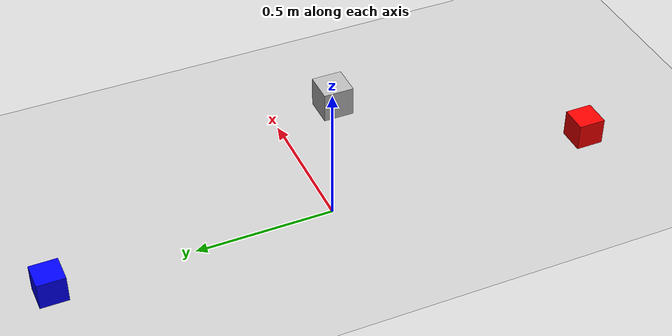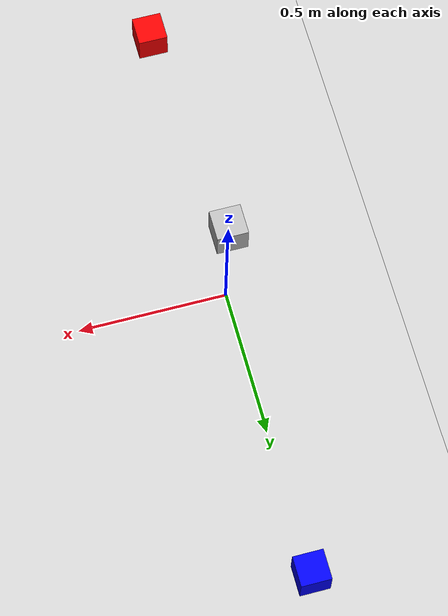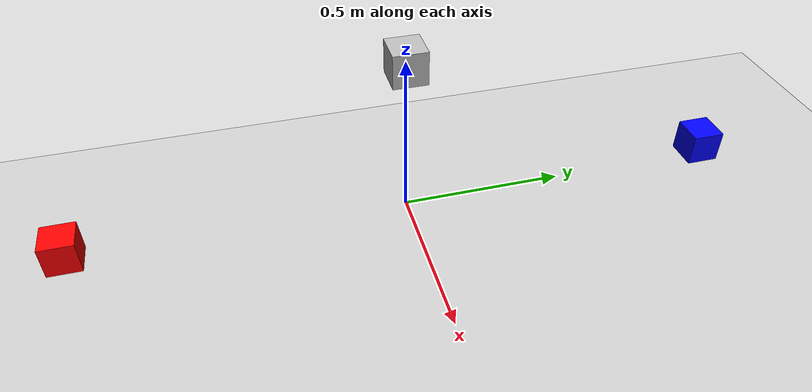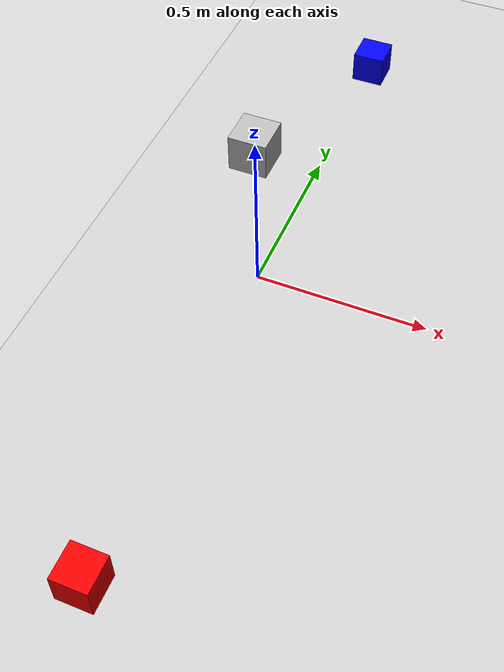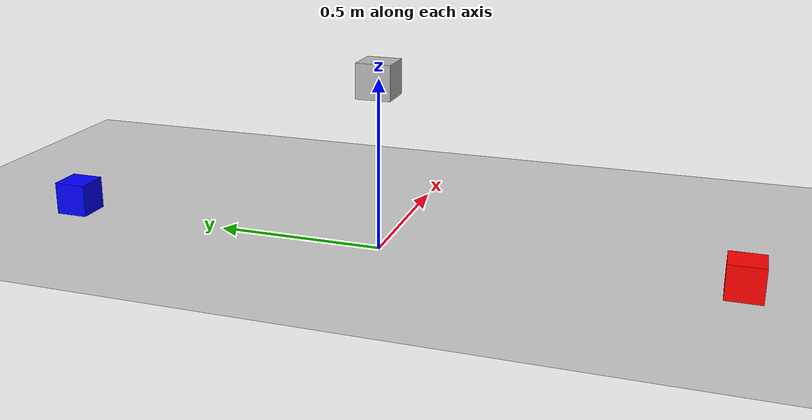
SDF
<?xml version="1.0"?>
<sdf version="1.4">
<world name="default">
    <include>
      <uri>model://ground_plane</uri>
    </include>

    <model name ='unit_box'>
        <pose>0.0 0.0 0.5 0.0 0.0 0.0</pose>
        <link name ='link'>
            <pose>0.0 0.0 0.0 0.0 0.0 0.0</pose>
            <collision name ='collision'>
            <geometry>
                <box><size>0.1 0.1 0.1</size></box>
            </geometry>
            </collision>
            <visual name ='visual'>
            <geometry>
                <box><size>0.1 0.1 0.1</size></box>
            </geometry>
            </visual>
        </link>

        <joint type="revolute" name="joint">
        <pose>0.0 0.0 0.0 0.0 0.0 0.0</pose>
        <child>link</child>
        <parent>link</parent>
        <axis>
            <xyz>0 0 0</xyz>
        </axis>
        </joint>
    </model>

    <model name="camera0">
        <static>true</static>
        <pose>0 1 0.05 0 0 0</pose>
        <link name="link">
            <inertial>
                <mass>0.01</mass>
                <inertia>
                    <ixx>0.001</ixx>
                    <iyy>0.001</iyy>
                    <izz>0.001</izz>
                    <ixy>0</ixy>
                    <ixz>0</ixz>
                    <iyz>0</iyz>
                </inertia>
            </inertial>
            <collision name="collision">
                <geometry>
                    <box>
                    <size>0.1 0.1 0.1</size>
                    </box>
                </geometry>
            </collision>
            <visual name="visual">
                <geometry>
                    <box>
                        <size>0.1 0.1 0.1</size>
                    </box>
                </geometry>
                <material>
                    <ambient>0 0 1.0 1</ambient>
                    <diffuse>0 0 1.0 1</diffuse>
                    <specular>0 0 1.0 1</specular>
                </material>
            </visual>
            <sensor name="camera" type="camera">
                <camera>
                    <horizontal_fov>1.047</horizontal_fov>
                    <image>
                        <width>320</width>
                        <height>240</height>
                    </image>
                    <clip>
                        <near>0.1</near>
                        <far>100</far>
                    </clip>
                </camera>
                <always_on>1</always_on>
                <update_rate>200</update_rate>
                <visualize>true</visualize>
            </sensor>
        </link>
    </model>

    <model name="depth_camera0">
        <static>true</static>
        <pose>0 -1 0.05 0 0 0</pose>
        <link name="link">
            <inertial>
                <mass>0.01</mass>
                <inertia>
                    <ixx>0.001</ixx>
                    <iyy>0.001</iyy>
                    <izz>0.001</izz>
                    <ixy>0</ixy>
                    <ixz>0</ixz>
                    <iyz>0</iyz>
                </inertia>
            </inertial>
            <collision name="collision">
                <geometry>
                    <box>
                    <size>0.1 0.1 0.1</size>
                    </box>
                </geometry>
            </collision>
            <visual name="visual">
                <geometry>
                    <box>
                        <size>0.1 0.1 0.1</size>
                    </box>
                </geometry>
                <material>
                    <ambient>1.0 0 0 1</ambient>
                    <diffuse>1.0 0 0 1</diffuse>
                    <specular>1.0 0 0 1</specular>
                </material>
            </visual>
            <sensor name="camera" type="depth">
                <camera>
                    <horizontal_fov>1.047</horizontal_fov>
                    <image>
                        <width>320</width>
                        <height>240</height>
                    </image>
                    <clip>
                        <near>0.1</near>
                        <far>100</far>
                    </clip>
                </camera>
                <always_on>1</always_on>
                <update_rate>200</update_rate>
                <visualize>true</visualize>
            </sensor>
        </link>
    </model>

    <model name='light_model'>
        <static>1</static>
        <pose>0 0 0.5 0 0.64 3.14</pose>
        <link name='light_source'>
            <collision name='light_collision'>
                <geometry>
                    <box>
                        <size>0.05 0.05 0.05</size>
                    </box>
                </geometry>
            </collision>
            <visual name='lamp'>
                <geometry>
                    <box>
                        <size>0.05 0.05 0.05</size>
                    </box>
                </geometry>
                <material>
                    <ambient>0.5 1 1 1</ambient>
                    <diffuse>0.5 1 1 1</diffuse>
                    <specular>1 1 1 1</specular>
                    <emissive>0.5 1 1 1</emissive>
                </material>
            </visual>
            <light name='lamp' type='spot'>
                <attenuation>
                    <range>30</range>
                    <linear>0.05</linear>
                </attenuation>
                <diffuse>0.5 1 1 1</diffuse>
                <specular>1 1 1 1</specular>
                <spot>
                    <inner_angle>0.9</inner_angle>
                    <outer_angle>0.95</outer_angle>
                    <falloff>1</falloff>
                </spot>
            </light>
        </link>

        <plugin name='light_control' filename='libLedPlugin.so'>
            <enable>true</enable>
            <light>
                <id>light_source/lamp</id>
                <duration>0.3</duration>
                <interval>0.4</interval>
                <enable>true</enable>
            </light>
        </plugin>
    </model>

    <plugin name="GazeboPlugin" filename="lib/libGazeboCoSimPlugin.so"><portNumber>14581</portNumber></plugin>
</world>
</sdf>
